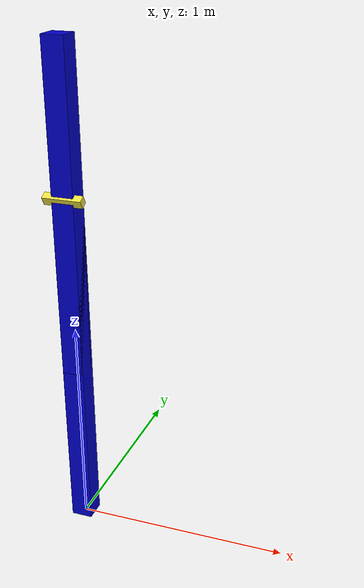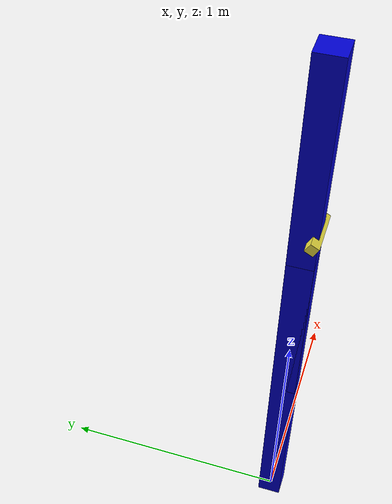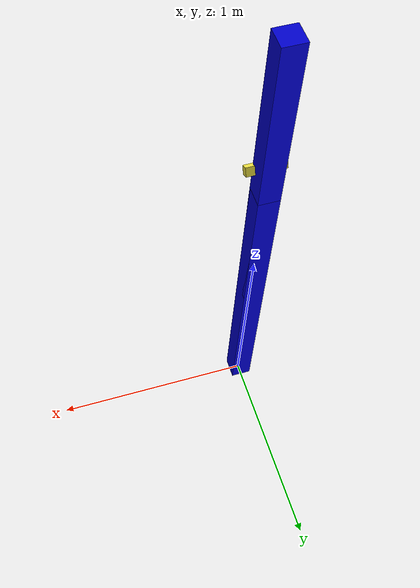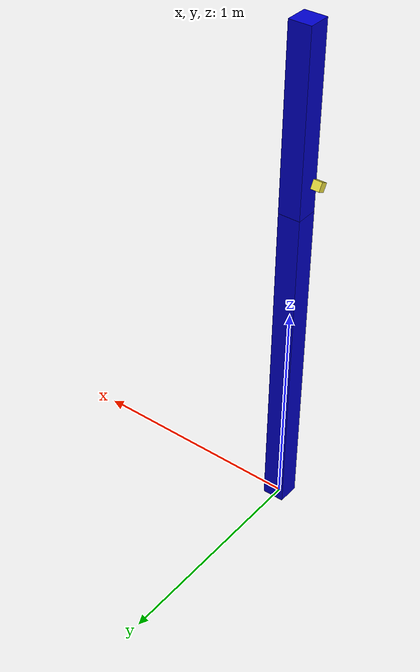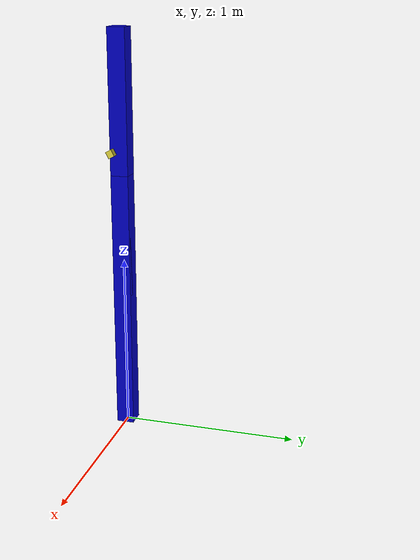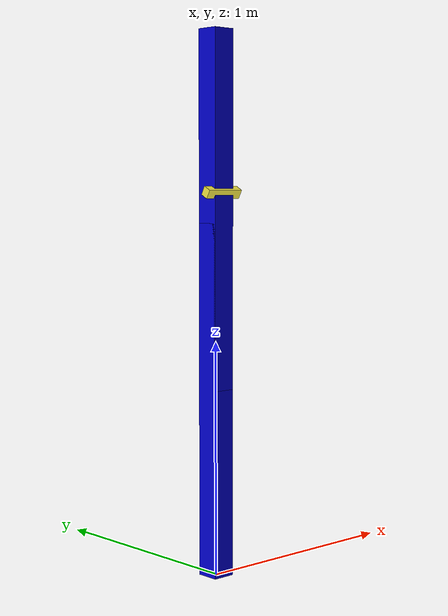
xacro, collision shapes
<?xml version="1.0"?>
<robot name="obj_recognition" xmlns:xacro="http://www.ros.org/wiki/xacro">

  <!--Define constants-->
  <xacro:property name="PI" value="3.14159"/>
  <xacro:property name="mass1" value="10" />
  <xacro:property name="mass2" value="1" />
  <xacro:property name="width1" value="0.1" /> <!--link_1 radius-->
  <xacro:property name="width2" value="0.1" /> <!--link_2 radius-->
  <xacro:property name="length0" value="0.1" /> <!--link_1 length-->
  <xacro:property name="length1" value="1.5" /> <!--link_2 length-->
  <xacro:property name="length2" value="0.1" /> <!--link_3 length-->
  <xacro:property name="mass_camera" value="0.2" />

  <!--Import gazebo elements-->
  <xacro:include filename="$(find obj_recognition)/urdf/obj_recognition.gazebo.xacro" />

  <!--Links-->
  <link name="world"/>

  <link name="link_1">
    <visual>
      <origin xyz="0 0 0" rpy="0 0 0"/>
      <geometry>
        <box size="${width1} ${width1} ${length1}"/>
      </geometry>
      <material name="blue">
        <color rgba="0.0 0.0 0.8 1.0"/>
      </material>
    </visual>
    <collision>
      <origin xyz="0 0 0" rpy="0 0 0"/>
      <geometry>
        <box size="${width1} ${width1} ${length1}"/>
      </geometry>
    </collision>
    <inertial>
      <origin xyz="0 0 0" rpy="0 0 0"/>
      <mass value="${mass1}"/>
      <inertia
        ixx="${mass1 / 12.0 * (width1*width1 + length1*length1)}" ixy="0.0" ixz="0.0"
        iyy="${mass1 / 12.0 * (length1*length1 + width1*width1)}" iyz="0.0"
        izz="${mass1 / 12.0 * (width1*width1 + width1*width1)}"/>
    </inertial>
  </link>

  <link name="link_2">
    <visual>
      <origin xyz="0 0 0" rpy="0 0 0"/>
      <geometry>
        <box size="${width1} ${width1} ${length1}"/>
      </geometry>
      <material name="blue">
        <color rgba="0.0 0.0 0.8 1.0"/>
      </material>
    </visual>
    <collision>
      <origin xyz="0 0 0" rpy="0 0 0"/>
      <geometry>
        <box size="${width1} ${width1} ${length1}"/>
      </geometry>
    </collision>
    <inertial>
      <origin xyz="0 0 0" rpy="0 0 0"/>
      <mass value="${mass1}"/>
      <inertia
              ixx="${mass1 / 12.0 * (width1*width1 + length1*length1)}" ixy="0.0" ixz="0.0"
              iyy="${mass1 / 12.0 * (length1*length1 + width1*width1)}" iyz="0.0"
              izz="${mass1 / 12.0 * (width1*width1 + width1*width1)}"/>
    </inertial>
  </link>

        <!--ixx="${mass2 / 12.0 * (width2*width2 + length2*length2)}" ixy="0.0" ixz="0.0"-->
        <!--iyy="${mass2 / 12.0 * (length2*length2 + width2*width2)}" iyz="0.0"-->

  <!-- RGBD camera -->
  <link name="camera_link">
  <collision>
    <origin xyz="-0.016 0 0" rpy="0 0 0"/>
    <geometry>
      <box size="0.036 0.18 0.04"/>
    </geometry>
  </collision>
  <visual>
    <origin xyz="0 0 0" rpy="0 0 0"/>
    <geometry>
      <mesh filename="package://obj_recognition/meshes/asus_xtion.dae"/>
    </geometry>
  </visual>
  <inertial>
    <mass value="${mass_camera}" />
    <origin xyz="0 0 0" rpy="0 0 0"/>
    <inertia ixx="5.8083e-4" ixy="0" ixz="0" iyy="3.0833e-5" iyz="0" izz="5.9083e-4" />
  </inertial>
  </link>

  <!--Joints-->
  <joint name="fixed_base_joint" type="fixed">
    <parent link="world"/>
    <child link="link_1"/>
    <origin xyz="0 0 ${length1/2}" rpy="0 0 0"/>
  </joint>

  <joint name="pan_joint" type="continuous">
    <parent link="link_1"/>
    <child link="link_2"/>
    <axis xyz="0 0 1"/>
    <origin xyz="0 0 ${length1/2+length2/2}" rpy="0 0 -${pi/2}"/>
  </joint>

  <joint name="tilt_joint" type="continuous">
    <origin xyz="0.05 0 ${length2/2+0.02}" rpy="0 0.5 0" />
    <parent link="link_2" />
    <child link="camera_link" />
    <axis xyz="0 1 0"/>
  </joint>
  <link name="camera_rgb_frame" />
  <joint name="camera_rgb_joint" type="fixed">
    <origin rpy="0 0 0" xyz="0 0.022 0" />
    <parent link="camera_link" />
    <child link="camera_rgb_frame" />
  </joint>
  <link name="camera_rgb_optical_frame" />
  <joint name="camera_rgb_optical_joint" type="fixed">
    <origin rpy="-1.57079632679 0 -1.57079632679" xyz="0 0 0" />
    <parent link="camera_rgb_frame" />
    <child link="camera_rgb_optical_frame" />
  </joint>
  <link name="camera_depth_frame" />
  <joint name="camera_depth_joint" type="fixed">
    <origin rpy="0 0 0" xyz="0 0.049 0" />
    <parent link="camera_link" />
    <child link="camera_depth_frame" />
  </joint>
  <link name="camera_depth_optical_frame" />
  <joint name="camera_depth_optical_joint" type="fixed">
    <origin rpy="-1.57079632679 0 -1.57079632679" xyz="0 0 0" />
    <parent link="camera_depth_frame" />
    <child link="camera_depth_optical_frame" />
  </joint>

  <!--Transmission and actuators-->
  <transmission name="tran1">
    <type>transmission_interface/SimpleTransmission</type>
    <joint name="pan_joint">
      <hardwareInterface>hardware_interface/PositionJointInterface</hardwareInterface>
    </joint>
    <actuator name="motor1">
      <hardwareInterface>hardware_interface/PositionJointInterface</hardwareInterface>
      <mechanicalReduction>1</mechanicalReduction>
    </actuator>
  </transmission>

  <transmission name="tran2">
    <type>transmission_interface/SimpleTransmission</type>
    <joint name="tilt_joint">
      <hardwareInterface>hardware_interface/PositionJointInterface</hardwareInterface>
    </joint>
    <actuator name="motor2">
      <hardwareInterface>hardware_interface/PositionJointInterface</hardwareInterface>
      <mechanicalReduction>1</mechanicalReduction>
    </actuator>
  </transmission>
</robot>
